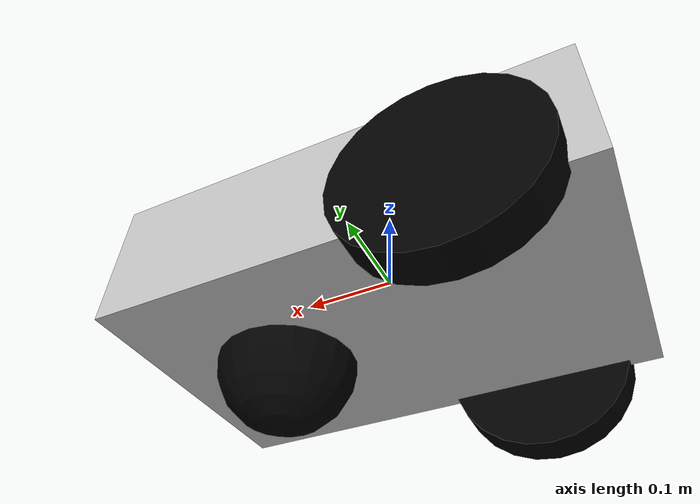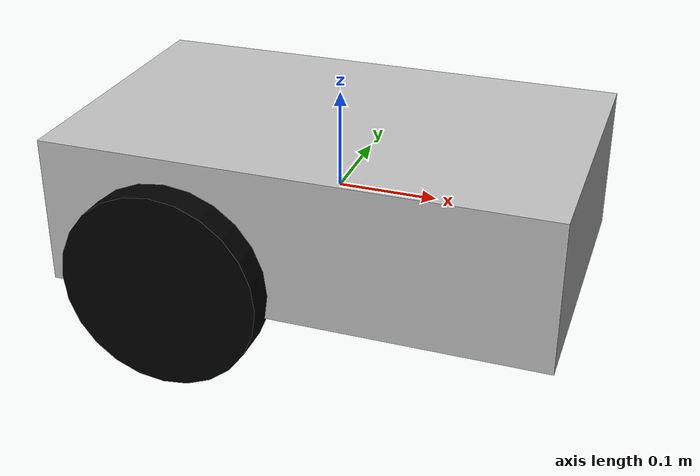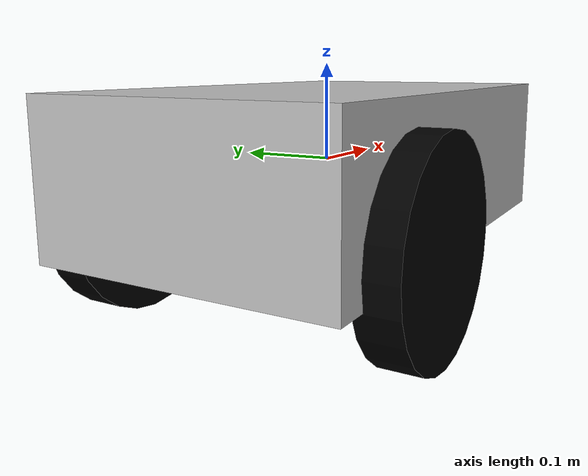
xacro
<?xml version="1.0"?>
<robot name="diff_drive_robot" xmlns:xacro="http://www.ros.org/wiki/xacro">

  <!-- Include modular components -->
  <xacro:include filename="materials.xacro" />
  <xacro:include filename="inertials.xacro" />

  <!-- Properties -->
  <xacro:property name="chassis_length" value="0.5" />
  <xacro:property name="chassis_width" value="0.3" />
  <xacro:property name="chassis_height" value="0.15" />
  <xacro:property name="wheel_radius" value="0.1" />
  <xacro:property name="wheel_width" value="0.04" />
  <xacro:property name="wheel_ygap" value="0.01" />
  <xacro:property name="wheel_zoff" value="0.05" />
  <xacro:property name="wheel_xoff" value="0.12" />

  <!-- Base Link -->
  <link name="base_link">
    <visual>
      <geometry>
        <box size="${chassis_length} ${chassis_width} ${chassis_height}"/>
      </geometry>
      <material name="silver"/>
    </visual>
    <collision>
      <geometry>
        <box size="${chassis_length} ${chassis_width} ${chassis_height}"/>
      </geometry>
    </collision>
    <xacro:box_inertia m="15.0" w="${chassis_width}" h="${chassis_height}" d="${chassis_length}"/>
  </link>

  <!-- Wheel Macro -->
  <xacro:macro name="wheel" params="prefix x_reflect y_reflect">
    <link name="${prefix}_link">
      <visual>
        <origin xyz="0 0 0" rpy="${pi/2} 0 0"/>
        <geometry>
          <cylinder radius="${wheel_radius}" length="${wheel_width}"/>
        </geometry>
        <material name="black"/>
      </visual>
      <collision>
        <origin xyz="0 0 0" rpy="${pi/2} 0 0"/>
        <geometry>
          <cylinder radius="${wheel_radius}" length="${wheel_width}"/>
        </geometry>
      </collision>
      <xacro:cylinder_inertia m="0.5" r="${wheel_radius}" h="${wheel_width}"/>
    </link>

    <joint name="${prefix}_joint" type="continuous">
      <parent link="base_link"/>
      <child link="${prefix}_link"/>
      <origin xyz="${x_reflect*wheel_xoff} ${y_reflect*(chassis_width/2+wheel_ygap)} ${-wheel_zoff}" rpy="0 0 0"/>
      <axis xyz="0 1 0"/>
    </joint>
  </xacro:macro>

  <xacro:wheel prefix="drivewhl_l" x_reflect="-1" y_reflect="1" />
  <xacro:wheel prefix="drivewhl_r" x_reflect="-1" y_reflect="-1" />

  <!-- Caster Wheel -->
  <link name="front_caster">
    <visual>
      <geometry>
        <sphere radius="${(wheel_radius+wheel_zoff)/2}"/>
      </geometry>
      <material name="black"/>
    </visual>
    <collision>
      <geometry>
        <sphere radius="${(wheel_radius+wheel_zoff)/2}"/>
      </geometry>
    </collision>
    <inertial>
      <mass value="0.1"/>
      <inertia ixx="0.0001" ixy="0.0" ixz="0.0" iyy="0.0001" iyz="0.0" izz="0.0001"/>
    </inertial>
  </link>

  <joint name="caster_joint" type="fixed">
    <parent link="base_link"/>
    <child link="front_caster"/>
    <origin xyz="${wheel_xoff} 0 ${-(wheel_radius+wheel_zoff)/2}" rpy="0 0 0"/>
  </joint>

</robot>

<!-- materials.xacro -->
<robot xmlns:xacro="http://www.ros.org/wiki/xacro">
  <material name="silver">
    <color rgba="0.75 0.75 0.75 1.0"/>
  </material>

  <material name="black">
    <color rgba="0.0 0.0 0.0 1.0"/>
  </material>
</robot>

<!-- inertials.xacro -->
<robot xmlns:xacro="http://www.ros.org/wiki/xacro">
  <!-- Macro for box inertia -->
  <xacro:macro name="box_inertia" params="m w h d">
    <inertial>
      <origin xyz="0 0 0" rpy="0 0 0"/>
      <mass value="${m}"/>
      <inertia ixx="${(m/12.0) * (h*h + d*d)}" ixy="0" ixz="0"
               iyy="${(m/12.0) * (w*w + d*d)}" iyz="0"
               izz="${(m/12.0) * (w*w + h*h)}"/>
    </inertial>
  </xacro:macro>

  <!-- Macro for cylinder inertia -->
  <xacro:macro name="cylinder_inertia" params="m r h">
    <inertial>
      <origin xyz="0 0 0" rpy="0 0 0"/>
      <mass value="${m}"/>
      <inertia ixx="${(m/12.0) * (3*r*r + h*h)}" ixy="0" ixz="0"
               iyy="${(m/12.0) * (3*r*r + h*h)}" iyz="0"
               izz="${(m/2.0) * (r*r)}"/>
    </inertial>
  </xacro:macro>
</robot>
